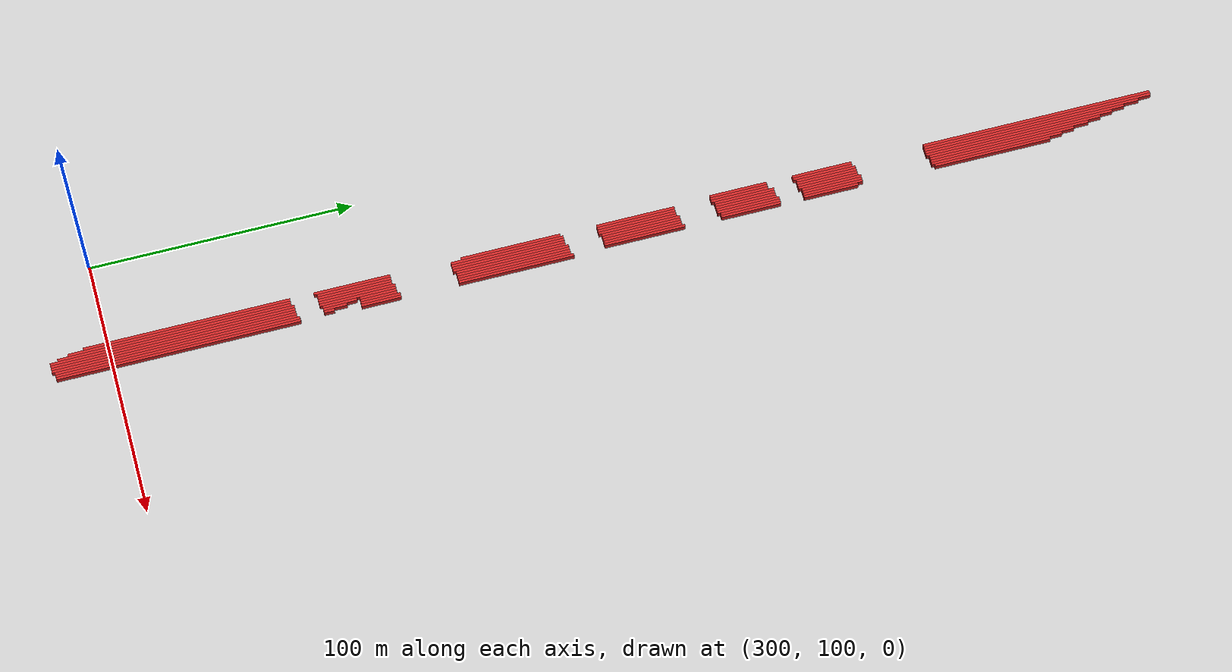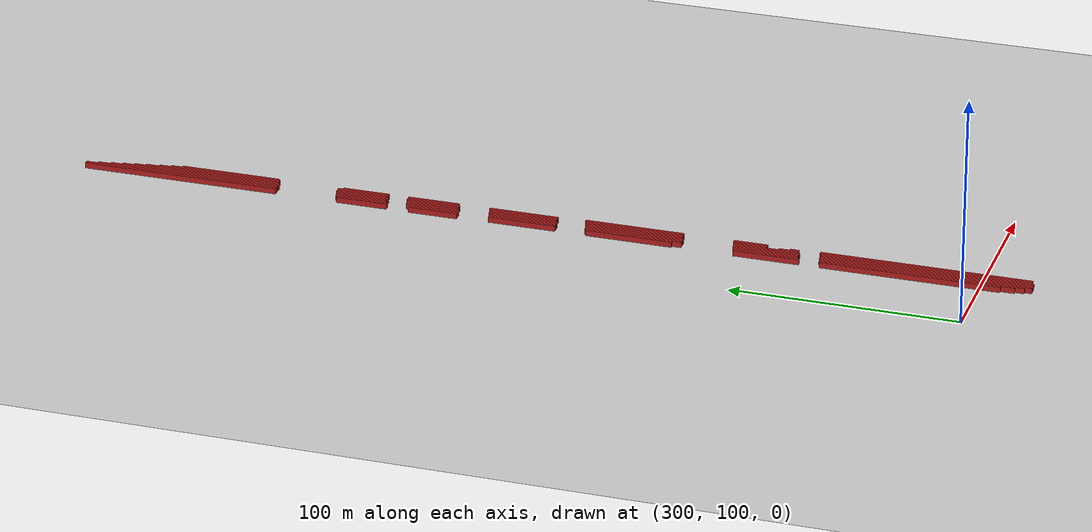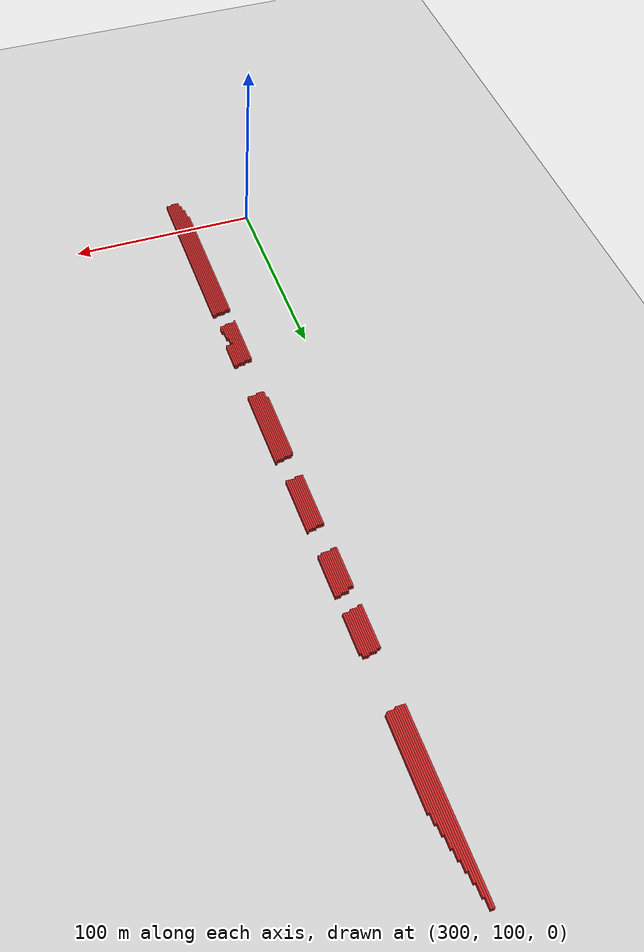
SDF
<sdf version="1.4">
 <world name="1_wall">
  <model name="ground_plane">
   <static>1</static>
   <link name="link">
    <collision name="collision">
     <geometry><plane><normal>0 0 1</normal><size>1000 1000</size></plane></geometry>
     <surface><friction><ode><mu>100</mu><mu2>50</mu2></ode></friction></surface>
    </collision>
    <visual name="visual">
     <cast_shadows>0</cast_shadows>
     <geometry><plane><normal>0 0 1</normal><size>10000 10000</size></plane></geometry>
     <material>
      <script><uri>file://media/materials/scripts/gazebo.material</uri><name>Gazebo/Grey</name></script>
     </material>
    </visual>
    <velocity_decay><linear>0</linear><angular>0</angular></velocity_decay>
   </link>
  </model>
  <model name="Wall_1798">
   <static>1</static>
   <link name="Wall_1798">
    <collision name="Wall_Collision_1798">
     <geometry><box><size>22.0 1.0 2.5</size></box></geometry>
     <pose>0 0 1.25 0 -0 0</pose>
    </collision>
    <visual name="Wall_Visual_1798">
     <pose>0 0 1.25 0 -0 0</pose>
     <geometry><box><size>22.0 1.0 2.5</size></box></geometry>
     <material>
      <script><uri>file://media/materials/scripts/gazebo.material</uri><name>Gazebo/Red</name></script>
     </material>
    </visual>
    <velocity_decay><linear>0</linear><angular>0</angular></velocity_decay>
    <pose>331.5 341.0 0 0 0 1.5707963267948966</pose>
   </link>
  </model>
  <model name="Wall_1799">
   <static>1</static>
   <link name="Wall_1799">
    <collision name="Wall_Collision_1799">
     <geometry><box><size>23.0 1.0 2.5</size></box></geometry>
     <pose>0 0 1.25 0 -0 0</pose>
    </collision>
    <visual name="Wall_Visual_1799">
     <pose>0 0 1.25 0 -0 0</pose>
     <geometry><box><size>23.0 1.0 2.5</size></box></geometry>
     <material>
      <script><uri>file://media/materials/scripts/gazebo.material</uri><name>Gazebo/Red</name></script>
     </material>
    </visual>
    <velocity_decay><linear>0</linear><angular>0</angular></velocity_decay>
    <pose>331.5 373.5 0 0 0 1.5707963267948966</pose>
   </link>
  </model>
  <model name="Wall_1800">
   <static>1</static>
   <link name="Wall_1800">
    <collision name="Wall_Collision_1800">
     <geometry><box><size>89.0 1.0 2.5</size></box></geometry>
     <pose>0 0 1.25 0 -0 0</pose>
    </collision>
    <visual name="Wall_Visual_1800">
     <pose>0 0 1.25 0 -0 0</pose>
     <geometry><box><size>89.0 1.0 2.5</size></box></geometry>
     <material>
      <script><uri>file://media/materials/scripts/gazebo.material</uri><name>Gazebo/Red</name></script>
     </material>
    </visual>
    <velocity_decay><linear>0</linear><angular>0</angular></velocity_decay>
    <pose>331.5 457.5 0 0 0 1.5707963267948966</pose>
   </link>
  </model>
  <model name="Wall_1801">
   <static>1</static>
   <link name="Wall_1801">
    <collision name="Wall_Collision_1801">
     <geometry><box><size>78.0 1.0 2.5</size></box></geometry>
     <pose>0 0 1.25 0 -0 0</pose>
    </collision>
    <visual name="Wall_Visual_1801">
     <pose>0 0 1.25 0 -0 0</pose>
     <geometry><box><size>78.0 1.0 2.5</size></box></geometry>
     <material>
      <script><uri>file://media/materials/scripts/gazebo.material</uri><name>Gazebo/Red</name></script>
     </material>
    </visual>
    <velocity_decay><linear>0</linear><angular>0</angular></velocity_decay>
    <pose>332.5 130.0 0 0 0 1.5707963267948966</pose>
   </link>
  </model>
  <model name="Wall_1802">
   <static>1</static>
   <link name="Wall_1802">
    <collision name="Wall_Collision_1802">
     <geometry><box><size>29.0 1.0 2.5</size></box></geometry>
     <pose>0 0 1.25 0 -0 0</pose>
    </collision>
    <visual name="Wall_Visual_1802">
     <pose>0 0 1.25 0 -0 0</pose>
     <geometry><box><size>29.0 1.0 2.5</size></box></geometry>
     <material>
      <script><uri>file://media/materials/scripts/gazebo.material</uri><name>Gazebo/Red</name></script>
     </material>
    </visual>
    <velocity_decay><linear>0</linear><angular>0</angular></velocity_decay>
    <pose>332.5 192.5 0 0 0 1.5707963267948966</pose>
   </link>
  </model>
  <model name="Wall_1803">
   <static>1</static>
   <link name="Wall_1803">
    <collision name="Wall_Collision_1803">
     <geometry><box><size>38.0 1.0 2.5</size></box></geometry>
     <pose>0 0 1.25 0 -0 0</pose>
    </collision>
    <visual name="Wall_Visual_1803">
     <pose>0 0 1.25 0 -0 0</pose>
     <geometry><box><size>38.0 1.0 2.5</size></box></geometry>
     <material>
      <script><uri>file://media/materials/scripts/gazebo.material</uri><name>Gazebo/Red</name></script>
     </material>
    </visual>
    <velocity_decay><linear>0</linear><angular>0</angular></velocity_decay>
    <pose>332.5 253.0 0 0 0 1.5707963267948966</pose>
   </link>
  </model>
  <model name="Wall_1804">
   <static>1</static>
   <link name="Wall_1804">
    <collision name="Wall_Collision_1804">
     <geometry><box><size>30.0 1.0 2.5</size></box></geometry>
     <pose>0 0 1.25 0 -0 0</pose>
    </collision>
    <visual name="Wall_Visual_1804">
     <pose>0 0 1.25 0 -0 0</pose>
     <geometry><box><size>30.0 1.0 2.5</size></box></geometry>
     <material>
      <script><uri>file://media/materials/scripts/gazebo.material</uri><name>Gazebo/Red</name></script>
     </material>
    </visual>
    <velocity_decay><linear>0</linear><angular>0</angular></velocity_decay>
    <pose>332.5 301.0 0 0 0 1.5707963267948966</pose>
   </link>
  </model>
  <model name="Wall_1805">
   <static>1</static>
   <link name="Wall_1805">
    <collision name="Wall_Collision_1805">
     <geometry><box><size>22.0 1.0 2.5</size></box></geometry>
     <pose>0 0 1.25 0 -0 0</pose>
    </collision>
    <visual name="Wall_Visual_1805">
     <pose>0 0 1.25 0 -0 0</pose>
     <geometry><box><size>22.0 1.0 2.5</size></box></geometry>
     <material>
      <script><uri>file://media/materials/scripts/gazebo.material</uri><name>Gazebo/Red</name></script>
     </material>
    </visual>
    <velocity_decay><linear>0</linear><angular>0</angular></velocity_decay>
    <pose>332.5 341.0 0 0 0 1.5707963267948966</pose>
   </link>
  </model>
  <model name="Wall_1806">
   <static>1</static>
   <link name="Wall_1806">
    <collision name="Wall_Collision_1806">
     <geometry><box><size>23.0 1.0 2.5</size></box></geometry>
     <pose>0 0 1.25 0 -0 0</pose>
    </collision>
    <visual name="Wall_Visual_1806">
     <pose>0 0 1.25 0 -0 0</pose>
     <geometry><box><size>23.0 1.0 2.5</size></box></geometry>
     <material>
      <script><uri>file://media/materials/scripts/gazebo.material</uri><name>Gazebo/Red</name></script>
     </material>
    </visual>
    <velocity_decay><linear>0</linear><angular>0</angular></velocity_decay>
    <pose>332.5 373.5 0 0 0 1.5707963267948966</pose>
   </link>
  </model>
  <model name="Wall_1807">
   <static>1</static>
   <link name="Wall_1807">
    <collision name="Wall_Collision_1807">
     <geometry><box><size>89.0 1.0 2.5</size></box></geometry>
     <pose>0 0 1.25 0 -0 0</pose>
    </collision>
    <visual name="Wall_Visual_1807">
     <pose>0 0 1.25 0 -0 0</pose>
     <geometry><box><size>89.0 1.0 2.5</size></box></geometry>
     <material>
      <script><uri>file://media/materials/scripts/gazebo.material</uri><name>Gazebo/Red</name></script>
     </material>
    </visual>
    <velocity_decay><linear>0</linear><angular>0</angular></velocity_decay>
    <pose>332.5 457.5 0 0 0 1.5707963267948966</pose>
   </link>
  </model>
  <model name="Wall_1808">
   <static>1</static>
   <link name="Wall_1808">
    <collision name="Wall_Collision_1808">
     <geometry><box><size>84.0 1.0 2.5</size></box></geometry>
     <pose>0 0 1.25 0 -0 0</pose>
    </collision>
    <visual name="Wall_Visual_1808">
     <pose>0 0 1.25 0 -0 0</pose>
     <geometry><box><size>84.0 1.0 2.5</size></box></geometry>
     <material>
      <script><uri>file://media/materials/scripts/gazebo.material</uri><name>Gazebo/Red</name></script>
     </material>
    </visual>
    <velocity_decay><linear>0</linear><angular>0</angular></velocity_decay>
    <pose>333.5 127.0 0 0 0 1.5707963267948966</pose>
   </link>
  </model>
  <model name="Wall_1809">
   <static>1</static>
   <link name="Wall_1809">
    <collision name="Wall_Collision_1809">
     <geometry><box><size>28.0 1.0 2.5</size></box></geometry>
     <pose>0 0 1.25 0 -0 0</pose>
    </collision>
    <visual name="Wall_Visual_1809">
     <pose>0 0 1.25 0 -0 0</pose>
     <geometry><box><size>28.0 1.0 2.5</size></box></geometry>
     <material>
      <script><uri>file://media/materials/scripts/gazebo.material</uri><name>Gazebo/Red</name></script>
     </material>
    </visual>
    <velocity_decay><linear>0</linear><angular>0</angular></velocity_decay>
    <pose>333.5 193.0 0 0 0 1.5707963267948966</pose>
   </link>
  </model>
  <model name="Wall_1810">
   <static>1</static>
   <link name="Wall_1810">
    <collision name="Wall_Collision_1810">
     <geometry><box><size>43.0 1.0 2.5</size></box></geometry>
     <pose>0 0 1.25 0 -0 0</pose>
    </collision>
    <visual name="Wall_Visual_1810">
     <pose>0 0 1.25 0 -0 0</pose>
     <geometry><box><size>43.0 1.0 2.5</size></box></geometry>
     <material>
      <script><uri>file://media/materials/scripts/gazebo.material</uri><name>Gazebo/Red</name></script>
     </material>
    </visual>
    <velocity_decay><linear>0</linear><angular>0</angular></velocity_decay>
    <pose>333.5 251.5 0 0 0 1.5707963267948966</pose>
   </link>
  </model>
  <model name="Wall_1811">
   <static>1</static>
   <link name="Wall_1811">
    <collision name="Wall_Collision_1811">
     <geometry><box><size>30.0 1.0 2.5</size></box></geometry>
     <pose>0 0 1.25 0 -0 0</pose>
    </collision>
    <visual name="Wall_Visual_1811">
     <pose>0 0 1.25 0 -0 0</pose>
     <geometry><box><size>30.0 1.0 2.5</size></box></geometry>
     <material>
      <script><uri>file://media/materials/scripts/gazebo.material</uri><name>Gazebo/Red</name></script>
     </material>
    </visual>
    <velocity_decay><linear>0</linear><angular>0</angular></velocity_decay>
    <pose>333.5 301.0 0 0 0 1.5707963267948966</pose>
   </link>
  </model>
  <model name="Wall_1812">
   <static>1</static>
   <link name="Wall_1812">
    <collision name="Wall_Collision_1812">
     <geometry><box><size>22.0 1.0 2.5</size></box></geometry>
     <pose>0 0 1.25 0 -0 0</pose>
    </collision>
    <visual name="Wall_Visual_1812">
     <pose>0 0 1.25 0 -0 0</pose>
     <geometry><box><size>22.0 1.0 2.5</size></box></geometry>
     <material>
      <script><uri>file://media/materials/scripts/gazebo.material</uri><name>Gazebo/Red</name></script>
     </material>
    </visual>
    <velocity_decay><linear>0</linear><angular>0</angular></velocity_decay>
    <pose>333.5 341.0 0 0 0 1.5707963267948966</pose>
   </link>
  </model>
  <model name="Wall_1813">
   <static>1</static>
   <link name="Wall_1813">
    <collision name="Wall_Collision_1813">
     <geometry><box><size>23.0 1.0 2.5</size></box></geometry>
     <pose>0 0 1.25 0 -0 0</pose>
    </collision>
    <visual name="Wall_Visual_1813">
     <pose>0 0 1.25 0 -0 0</pose>
     <geometry><box><size>23.0 1.0 2.5</size></box></geometry>
     <material>
      <script><uri>file://media/materials/scripts/gazebo.material</uri><name>Gazebo/Red</name></script>
     </material>
    </visual>
    <velocity_decay><linear>0</linear><angular>0</angular></velocity_decay>
    <pose>333.5 374.5 0 0 0 1.5707963267948966</pose>
   </link>
  </model>
  <model name="Wall_1814">
   <static>1</static>
   <link name="Wall_1814">
    <collision name="Wall_Collision_1814">
     <geometry><box><size>84.0 1.0 2.5</size></box></geometry>
     <pose>0 0 1.25 0 -0 0</pose>
    </collision>
    <visual name="Wall_Visual_1814">
     <pose>0 0 1.25 0 -0 0</pose>
     <geometry><box><size>84.0 1.0 2.5</size></box></geometry>
     <material>
      <script><uri>file://media/materials/scripts/gazebo.material</uri><name>Gazebo/Red</name></script>
     </material>
    </visual>
    <velocity_decay><linear>0</linear><angular>0</angular></velocity_decay>
    <pose>333.5 455.0 0 0 0 1.5707963267948966</pose>
   </link>
  </model>
  <model name="Wall_1815">
   <static>1</static>
   <link name="Wall_1815">
    <collision name="Wall_Collision_1815">
     <geometry><box><size>88.0 1.0 2.5</size></box></geometry>
     <pose>0 0 1.25 0 -0 0</pose>
    </collision>
    <visual name="Wall_Visual_1815">
     <pose>0 0 1.25 0 -0 0</pose>
     <geometry><box><size>88.0 1.0 2.5</size></box></geometry>
     <material>
      <script><uri>file://media/materials/scripts/gazebo.material</uri><name>Gazebo/Red</name></script>
     </material>
    </visual>
    <velocity_decay><linear>0</linear><angular>0</angular></velocity_decay>
    <pose>334.5 125.0 0 0 0 1.5707963267948966</pose>
   </link>
  </model>
  <model name="Wall_1816">
   <static>1</static>
   <link name="Wall_1816">
    <collision name="Wall_Collision_1816">
     <geometry><box><size>28.0 1.0 2.5</size></box></geometry>
     <pose>0 0 1.25 0 -0 0</pose>
    </collision>
    <visual name="Wall_Visual_1816">
     <pose>0 0 1.25 0 -0 0</pose>
     <geometry><box><size>28.0 1.0 2.5</size></box></geometry>
     <material>
      <script><uri>file://media/materials/scripts/gazebo.material</uri><name>Gazebo/Red</name></script>
     </material>
    </visual>
    <velocity_decay><linear>0</linear><angular>0</angular></velocity_decay>
    <pose>334.5 193.0 0 0 0 1.5707963267948966</pose>
   </link>
  </model>
  <model name="Wall_1817">
   <static>1</static>
   <link name="Wall_1817">
    <collision name="Wall_Collision_1817">
     <geometry><box><size>43.0 1.0 2.5</size></box></geometry>
     <pose>0 0 1.25 0 -0 0</pose>
    </collision>
    <visual name="Wall_Visual_1817">
     <pose>0 0 1.25 0 -0 0</pose>
     <geometry><box><size>43.0 1.0 2.5</size></box></geometry>
     <material>
      <script><uri>file://media/materials/scripts/gazebo.material</uri><name>Gazebo/Red</name></script>
     </material>
    </visual>
    <velocity_decay><linear>0</linear><angular>0</angular></velocity_decay>
    <pose>334.5 251.5 0 0 0 1.5707963267948966</pose>
   </link>
  </model>
  <model name="Wall_1818">
   <static>1</static>
   <link name="Wall_1818">
    <collision name="Wall_Collision_1818">
     <geometry><box><size>30.0 1.0 2.5</size></box></geometry>
     <pose>0 0 1.25 0 -0 0</pose>
    </collision>
    <visual name="Wall_Visual_1818">
     <pose>0 0 1.25 0 -0 0</pose>
     <geometry><box><size>30.0 1.0 2.5</size></box></geometry>
     <material>
      <script><uri>file://media/materials/scripts/gazebo.material</uri><name>Gazebo/Red</name></script>
     </material>
    </visual>
    <velocity_decay><linear>0</linear><angular>0</angular></velocity_decay>
    <pose>334.5 301.0 0 0 0 1.5707963267948966</pose>
   </link>
  </model>
  <model name="Wall_1819">
   <static>1</static>
   <link name="Wall_1819">
    <collision name="Wall_Collision_1819">
     <geometry><box><size>23.0 1.0 2.5</size></box></geometry>
     <pose>0 0 1.25 0 -0 0</pose>
    </collision>
    <visual name="Wall_Visual_1819">
     <pose>0 0 1.25 0 -0 0</pose>
     <geometry><box><size>23.0 1.0 2.5</size></box></geometry>
     <material>
      <script><uri>file://media/materials/scripts/gazebo.material</uri><name>Gazebo/Red</name></script>
     </material>
    </visual>
    <velocity_decay><linear>0</linear><angular>0</angular></velocity_decay>
    <pose>334.5 342.5 0 0 0 1.5707963267948966</pose>
   </link>
  </model>
  <model name="Wall_1820">
   <static>1</static>
   <link name="Wall_1820">
    <collision name="Wall_Collision_1820">
     <geometry><box><size>23.0 1.0 2.5</size></box></geometry>
     <pose>0 0 1.25 0 -0 0</pose>
    </collision>
    <visual name="Wall_Visual_1820">
     <pose>0 0 1.25 0 -0 0</pose>
     <geometry><box><size>23.0 1.0 2.5</size></box></geometry>
     <material>
      <script><uri>file://media/materials/scripts/gazebo.material</uri><name>Gazebo/Red</name></script>
     </material>
    </visual>
    <velocity_decay><linear>0</linear><angular>0</angular></velocity_decay>
    <pose>334.5 374.5 0 0 0 1.5707963267948966</pose>
   </link>
  </model>
  <model name="Wall_1821">
   <static>1</static>
   <link name="Wall_1821">
    <collision name="Wall_Collision_1821">
     <geometry><box><size>78.0 1.0 2.5</size></box></geometry>
     <pose>0 0 1.25 0 -0 0</pose>
    </collision>
    <visual name="Wall_Visual_1821">
     <pose>0 0 1.25 0 -0 0</pose>
     <geometry><box><size>78.0 1.0 2.5</size></box></geometry>
     <material>
      <script><uri>file://media/materials/scripts/gazebo.material</uri><name>Gazebo/Red</name></script>
     </material>
    </visual>
    <velocity_decay><linear>0</linear><angular>0</angular></velocity_decay>
    <pose>334.5 452.0 0 0 0 1.5707963267948966</pose>
   </link>
  </model>
  <model name="Wall_1822">
   <static>1</static>
   <link name="Wall_1822">
    <collision name="Wall_Collision_1822">
     <geometry><box><size>92.0 1.0 2.5</size></box></geometry>
     <pose>0 0 1.25 0 -0 0</pose>
    </collision>
    <visual name="Wall_Visual_1822">
     <pose>0 0 1.25 0 -0 0</pose>
     <geometry><box><size>92.0 1.0 2.5</size></box></geometry>
     <material>
      <script><uri>file://media/materials/scripts/gazebo.material</uri><name>Gazebo/Red</name></script>
     </material>
    </visual>
    <velocity_decay><linear>0</linear><angular>0</angular></velocity_decay>
    <pose>335.5 124.0 0 0 0 1.5707963267948966</pose>
   </link>
  </model>
  <model name="Wall_1823">
   <static>1</static>
   <link name="Wall_1823">
    <collision name="Wall_Collision_1823">
     <geometry><box><size>28.0 1.0 2.5</size></box></geometry>
     <pose>0 0 1.25 0 -0 0</pose>
    </collision>
    <visual name="Wall_Visual_1823">
     <pose>0 0 1.25 0 -0 0</pose>
     <geometry><box><size>28.0 1.0 2.5</size></box></geometry>
     <material>
      <script><uri>file://media/materials/scripts/gazebo.material</uri><name>Gazebo/Red</name></script>
     </material>
    </visual>
    <velocity_decay><linear>0</linear><angular>0</angular></velocity_decay>
    <pose>335.5 193.0 0 0 0 1.5707963267948966</pose>
   </link>
  </model>
  <model name="Wall_1824">
   <static>1</static>
   <link name="Wall_1824">
    <collision name="Wall_Collision_1824">
     <geometry><box><size>43.0 1.0 2.5</size></box></geometry>
     <pose>0 0 1.25 0 -0 0</pose>
    </collision>
    <visual name="Wall_Visual_1824">
     <pose>0 0 1.25 0 -0 0</pose>
     <geometry><box><size>43.0 1.0 2.5</size></box></geometry>
     <material>
      <script><uri>file://media/materials/scripts/gazebo.material</uri><name>Gazebo/Red</name></script>
     </material>
    </visual>
    <velocity_decay><linear>0</linear><angular>0</angular></velocity_decay>
    <pose>335.5 251.5 0 0 0 1.5707963267948966</pose>
   </link>
  </model>
  <model name="Wall_1825">
   <static>1</static>
   <link name="Wall_1825">
    <collision name="Wall_Collision_1825">
     <geometry><box><size>30.0 1.0 2.5</size></box></geometry>
     <pose>0 0 1.25 0 -0 0</pose>
    </collision>
    <visual name="Wall_Visual_1825">
     <pose>0 0 1.25 0 -0 0</pose>
     <geometry><box><size>30.0 1.0 2.5</size></box></geometry>
     <material>
      <script><uri>file://media/materials/scripts/gazebo.material</uri><name>Gazebo/Red</name></script>
     </material>
    </visual>
    <velocity_decay><linear>0</linear><angular>0</angular></velocity_decay>
    <pose>335.5 301.0 0 0 0 1.5707963267948966</pose>
   </link>
  </model>
  <model name="Wall_1826">
   <static>1</static>
   <link name="Wall_1826">
    <collision name="Wall_Collision_1826">
     <geometry><box><size>23.0 1.0 2.5</size></box></geometry>
     <pose>0 0 1.25 0 -0 0</pose>
    </collision>
    <visual name="Wall_Visual_1826">
     <pose>0 0 1.25 0 -0 0</pose>
     <geometry><box><size>23.0 1.0 2.5</size></box></geometry>
     <material>
      <script><uri>file://media/materials/scripts/gazebo.material</uri><name>Gazebo/Red</name></script>
     </material>
    </visual>
    <velocity_decay><linear>0</linear><angular>0</angular></velocity_decay>
    <pose>335.5 342.5 0 0 0 1.5707963267948966</pose>
   </link>
  </model>
  <model name="Wall_1827">
   <static>1</static>
   <link name="Wall_1827">
    <collision name="Wall_Collision_1827">
     <geometry><box><size>23.0 1.0 2.5</size></box></geometry>
     <pose>0 0 1.25 0 -0 0</pose>
    </collision>
    <visual name="Wall_Visual_1827">
     <pose>0 0 1.25 0 -0 0</pose>
     <geometry><box><size>23.0 1.0 2.5</size></box></geometry>
     <material>
      <script><uri>file://media/materials/scripts/gazebo.material</uri><name>Gazebo/Red</name></script>
     </material>
    </visual>
    <velocity_decay><linear>0</linear><angular>0</angular></velocity_decay>
    <pose>335.5 374.5 0 0 0 1.5707963267948966</pose>
   </link>
  </model>
  <model name="Wall_1828">
   <static>1</static>
   <link name="Wall_1828">
    <collision name="Wall_Collision_1828">
     <geometry><box><size>73.0 1.0 2.5</size></box></geometry>
     <pose>0 0 1.25 0 -0 0</pose>
    </collision>
    <visual name="Wall_Visual_1828">
     <pose>0 0 1.25 0 -0 0</pose>
     <geometry><box><size>73.0 1.0 2.5</size></box></geometry>
     <material>
      <script><uri>file://media/materials/scripts/gazebo.material</uri><name>Gazebo/Red</name></script>
     </material>
    </visual>
    <velocity_decay><linear>0</linear><angular>0</angular></velocity_decay>
    <pose>335.5 449.5 0 0 0 1.5707963267948966</pose>
   </link>
  </model>
  <model name="Wall_1829">
   <static>1</static>
   <link name="Wall_1829">
    <collision name="Wall_Collision_1829">
     <geometry><box><size>92.0 1.0 2.5</size></box></geometry>
     <pose>0 0 1.25 0 -0 0</pose>
    </collision>
    <visual name="Wall_Visual_1829">
     <pose>0 0 1.25 0 -0 0</pose>
     <geometry><box><size>92.0 1.0 2.5</size></box></geometry>
     <material>
      <script><uri>file://media/materials/scripts/gazebo.material</uri><name>Gazebo/Red</name></script>
     </material>
    </visual>
    <velocity_decay><linear>0</linear><angular>0</angular></velocity_decay>
    <pose>336.5 124.0 0 0 0 1.5707963267948966</pose>
   </link>
  </model>
  <model name="Wall_1830">
   <static>1</static>
   <link name="Wall_1830">
    <collision name="Wall_Collision_1830">
     <geometry><box><size>29.0 1.0 2.5</size></box></geometry>
     <pose>0 0 1.25 0 -0 0</pose>
    </collision>
    <visual name="Wall_Visual_1830">
     <pose>0 0 1.25 0 -0 0</pose>
     <geometry><box><size>29.0 1.0 2.5</size></box></geometry>
     <material>
      <script><uri>file://media/materials/scripts/gazebo.material</uri><name>Gazebo/Red</name></script>
     </material>
    </visual>
    <velocity_decay><linear>0</linear><angular>0</angular></velocity_decay>
    <pose>336.5 193.5 0 0 0 1.5707963267948966</pose>
   </link>
  </model>
  <model name="Wall_1831">
   <static>1</static>
   <link name="Wall_1831">
    <collision name="Wall_Collision_1831">
     <geometry><box><size>43.0 1.0 2.5</size></box></geometry>
     <pose>0 0 1.25 0 -0 0</pose>
    </collision>
    <visual name="Wall_Visual_1831">
     <pose>0 0 1.25 0 -0 0</pose>
     <geometry><box><size>43.0 1.0 2.5</size></box></geometry>
     <material>
      <script><uri>file://media/materials/scripts/gazebo.material</uri><name>Gazebo/Red</name></script>
     </material>
    </visual>
    <velocity_decay><linear>0</linear><angular>0</angular></velocity_decay>
    <pose>336.5 251.5 0 0 0 1.5707963267948966</pose>
   </link>
  </model>
  <model name="Wall_1832">
   <static>1</static>
   <link name="Wall_1832">
    <collision name="Wall_Collision_1832">
     <geometry><box><size>30.0 1.0 2.5</size></box></geometry>
     <pose>0 0 1.25 0 -0 0</pose>
    </collision>
    <visual name="Wall_Visual_1832">
     <pose>0 0 1.25 0 -0 0</pose>
     <geometry><box><size>30.0 1.0 2.5</size></box></geometry>
     <material>
      <script><uri>file://media/materials/scripts/gazebo.material</uri><name>Gazebo/Red</name></script>
     </material>
    </visual>
    <velocity_decay><linear>0</linear><angular>0</angular></velocity_decay>
    <pose>336.5 302.0 0 0 0 1.5707963267948966</pose>
   </link>
  </model>
  <model name="Wall_1833">
   <static>1</static>
   <link name="Wall_1833">
    <collision name="Wall_Collision_1833">
     <geometry><box><size>23.0 1.0 2.5</size></box></geometry>
     <pose>0 0 1.25 0 -0 0</pose>
    </collision>
    <visual name="Wall_Visual_1833">
     <pose>0 0 1.25 0 -0 0</pose>
     <geometry><box><size>23.0 1.0 2.5</size></box></geometry>
     <material>
      <script><uri>file://media/materials/scripts/gazebo.material</uri><name>Gazebo/Red</name></script>
     </material>
    </visual>
    <velocity_decay><linear>0</linear><angular>0</angular></velocity_decay>
    <pose>336.5 342.5 0 0 0 1.5707963267948966</pose>
   </link>
  </model>
  <model name="Wall_1834">
   <static>1</static>
   <link name="Wall_1834">
    <collision name="Wall_Collision_1834">
     <geometry><box><size>23.0 1.0 2.5</size></box></geometry>
     <pose>0 0 1.25 0 -0 0</pose>
    </collision>
    <visual name="Wall_Visual_1834">
     <pose>0 0 1.25 0 -0 0</pose>
     <geometry><box><size>23.0 1.0 2.5</size></box></geometry>
     <material>
      <script><uri>file://media/materials/scripts/gazebo.material</uri><name>Gazebo/Red</name></script>
     </material>
    </visual>
    <velocity_decay><linear>0</linear><angular>0</angular></velocity_decay>
    <pose>336.5 374.5 0 0 0 1.5707963267948966</pose>
   </link>
  </model>
  <model name="Wall_1835">
   <static>1</static>
   <link name="Wall_1835">
    <collision name="Wall_Collision_1835">
     <geometry><box><size>67.0 1.0 2.5</size></box></geometry>
     <pose>0 0 1.25 0 -0 0</pose>
    </collision>
    <visual name="Wall_Visual_1835">
     <pose>0 0 1.25 0 -0 0</pose>
     <geometry><box><size>67.0 1.0 2.5</size></box></geometry>
     <material>
      <script><uri>file://media/materials/scripts/gazebo.material</uri><name>Gazebo/Red</name></script>
     </material>
    </visual>
    <velocity_decay><linear>0</linear><angular>0</angular></velocity_decay>
    <pose>336.5 447.5 0 0 0 1.5707963267948966</pose>
   </link>
  </model>
  <model name="Wall_1836">
   <static>1</static>
   <link name="Wall_1836">
    <collision name="Wall_Collision_1836">
     <geometry><box><size>92.0 1.0 2.5</size></box></geometry>
     <pose>0 0 1.25 0 -0 0</pose>
    </collision>
    <visual name="Wall_Visual_1836">
     <pose>0 0 1.25 0 -0 0</pose>
     <geometry><box><size>92.0 1.0 2.5</size></box></geometry>
     <material>
      <script><uri>file://media/materials/scripts/gazebo.material</uri><name>Gazebo/Red</name></script>
     </material>
    </visual>
    <velocity_decay><linear>0</linear><angular>0</angular></velocity_decay>
    <pose>337.5 124.0 0 0 0 1.5707963267948966</pose>
   </link>
  </model>
  <model name="Wall_1837">
   <static>1</static>
   <link name="Wall_1837">
    <collision name="Wall_Collision_1837">
     <geometry><box><size>29.0 1.0 2.5</size></box></geometry>
     <pose>0 0 1.25 0 -0 0</pose>
    </collision>
    <visual name="Wall_Visual_1837">
     <pose>0 0 1.25 0 -0 0</pose>
     <geometry><box><size>29.0 1.0 2.5</size></box></geometry>
     <material>
      <script><uri>file://media/materials/scripts/gazebo.material</uri><name>Gazebo/Red</name></script>
     </material>
    </visual>
    <velocity_decay><linear>0</linear><angular>0</angular></velocity_decay>
    <pose>337.5 193.5 0 0 0 1.5707963267948966</pose>
   </link>
  </model>
  <model name="Wall_1838">
   <static>1</static>
   <link name="Wall_1838">
    <collision name="Wall_Collision_1838">
     <geometry><box><size>43.0 1.0 2.5</size></box></geometry>
     <pose>0 0 1.25 0 -0 0</pose>
    </collision>
    <visual name="Wall_Visual_1838">
     <pose>0 0 1.25 0 -0 0</pose>
     <geometry><box><size>43.0 1.0 2.5</size></box></geometry>
     <material>
      <script><uri>file://media/materials/scripts/gazebo.material</uri><name>Gazebo/Red</name></script>
     </material>
    </visual>
    <velocity_decay><linear>0</linear><angular>0</angular></velocity_decay>
    <pose>337.5 252.5 0 0 0 1.5707963267948966</pose>
   </link>
  </model>
  <model name="Wall_1839">
   <static>1</static>
   <link name="Wall_1839">
    <collision name="Wall_Collision_1839">
     <geometry><box><size>30.0 1.0 2.5</size></box></geometry>
     <pose>0 0 1.25 0 -0 0</pose>
    </collision>
    <visual name="Wall_Visual_1839">
     <pose>0 0 1.25 0 -0 0</pose>
     <geometry><box><size>30.0 1.0 2.5</size></box></geometry>
     <material>
      <script><uri>file://media/materials/scripts/gazebo.material</uri><name>Gazebo/Red</name></script>
     </material>
    </visual>
    <velocity_decay><linear>0</linear><angular>0</angular></velocity_decay>
    <pose>337.5 302.0 0 0 0 1.5707963267948966</pose>
   </link>
  </model>
  <model name="Wall_1840">
   <static>1</static>
   <link name="Wall_1840">
    <collision name="Wall_Collision_1840">
     <geometry><box><size>23.0 1.0 2.5</size></box></geometry>
     <pose>0 0 1.25 0 -0 0</pose>
    </collision>
    <visual name="Wall_Visual_1840">
     <pose>0 0 1.25 0 -0 0</pose>
     <geometry><box><size>23.0 1.0 2.5</size></box></geometry>
     <material>
      <script><uri>file://media/materials/scripts/gazebo.material</uri><name>Gazebo/Red</name></script>
     </material>
    </visual>
    <velocity_decay><linear>0</linear><angular>0</angular></velocity_decay>
    <pose>337.5 342.5 0 0 0 1.5707963267948966</pose>
   </link>
  </model>
  <model name="Wall_1841">
   <static>1</static>
   <link name="Wall_1841">
    <collision name="Wall_Collision_1841">
     <geometry><box><size>23.0 1.0 2.5</size></box></geometry>
     <pose>0 0 1.25 0 -0 0</pose>
    </collision>
    <visual name="Wall_Visual_1841">
     <pose>0 0 1.25 0 -0 0</pose>
     <geometry><box><size>23.0 1.0 2.5</size></box></geometry>
     <material>
      <script><uri>file://media/materials/scripts/gazebo.material</uri><name>Gazebo/Red</name></script>
     </material>
    </visual>
    <velocity_decay><linear>0</linear><angular>0</angular></velocity_decay>
    <pose>337.5 375.5 0 0 0 1.5707963267948966</pose>
   </link>
  </model>
  <model name="Wall_1842">
   <static>1</static>
   <link name="Wall_1842">
    <collision name="Wall_Collision_1842">
     <geometry><box><size>62.0 1.0 2.5</size></box></geometry>
     <pose>0 0 1.25 0 -0 0</pose>
    </collision>
    <visual name="Wall_Visual_1842">
     <pose>0 0 1.25 0 -0 0</pose>
     <geometry><box><size>62.0 1.0 2.5</size></box></geometry>
     <material>
      <script><uri>file://media/materials/scripts/gazebo.material</uri><name>Gazebo/Red</name></script>
     </material>
    </visual>
    <velocity_decay><linear>0</linear><angular>0</angular></velocity_decay>
    <pose>337.5 445.0 0 0 0 1.5707963267948966</pose>
   </link>
  </model>
  <model name="Wall_1843">
   <static>1</static>
   <link name="Wall_1843">
    <collision name="Wall_Collision_1843">
     <geometry><box><size>92.0 1.0 2.5</size></box></geometry>
     <pose>0 0 1.25 0 -0 0</pose>
    </collision>
    <visual name="Wall_Visual_1843">
     <pose>0 0 1.25 0 -0 0</pose>
     <geometry><box><size>92.0 1.0 2.5</size></box></geometry>
     <material>
      <script><uri>file://media/materials/scripts/gazebo.material</uri><name>Gazebo/Red</name></script>
     </material>
    </visual>
    <velocity_decay><linear>0</linear><angular>0</angular></velocity_decay>
    <pose>338.5 124.0 0 0 0 1.5707963267948966</pose>
   </link>
  </model>
  <model name="Wall_1844">
   <static>1</static>
   <link name="Wall_1844">
    <collision name="Wall_Collision_1844">
     <geometry><box><size>13.0 1.0 2.5</size></box></geometry>
     <pose>0 0 1.25 0 -0 0</pose>
    </collision>
    <visual name="Wall_Visual_1844">
     <pose>0 0 1.25 0 -0 0</pose>
     <geometry><box><size>13.0 1.0 2.5</size></box></geometry>
     <material>
      <script><uri>file://media/materials/scripts/gazebo.material</uri><name>Gazebo/Red</name></script>
     </material>
    </visual>
    <velocity_decay><linear>0</linear><angular>0</angular></velocity_decay>
    <pose>338.5 186.5 0 0 0 1.5707963267948966</pose>
   </link>
  </model>
  <model name="Wall_1845">
   <static>1</static>
   <link name="Wall_1845">
    <collision name="Wall_Collision_1845">
     <geometry><box><size>14.0 1.0 2.5</size></box></geometry>
     <pose>0 0 1.25 0 -0 0</pose>
    </collision>
    <visual name="Wall_Visual_1845">
     <pose>0 0 1.25 0 -0 0</pose>
     <geometry><box><size>14.0 1.0 2.5</size></box></geometry>
     <material>
      <script><uri>file://media/materials/scripts/gazebo.material</uri><name>Gazebo/Red</name></script>
     </material>
    </visual>
    <velocity_decay><linear>0</linear><angular>0</angular></velocity_decay>
    <pose>338.5 201.0 0 0 0 1.5707963267948966</pose>
   </link>
  </model>
  <model name="Wall_1846">
   <static>1</static>
   <link name="Wall_1846">
    <collision name="Wall_Collision_1846">
     <geometry><box><size>43.0 1.0 2.5</size></box></geometry>
     <pose>0 0 1.25 0 -0 0</pose>
    </collision>
    <visual name="Wall_Visual_1846">
     <pose>0 0 1.25 0 -0 0</pose>
     <geometry><box><size>43.0 1.0 2.5</size></box></geometry>
     <material>
      <script><uri>file://media/materials/scripts/gazebo.material</uri><name>Gazebo/Red</name></script>
     </material>
    </visual>
    <velocity_decay><linear>0</linear><angular>0</angular></velocity_decay>
    <pose>338.5 252.5 0 0 0 1.5707963267948966</pose>
   </link>
  </model>
  <model name="Wall_1847">
   <static>1</static>
   <link name="Wall_1847">
    <collision name="Wall_Collision_1847">
     <geometry><box><size>30.0 1.0 2.5</size></box></geometry>
     <pose>0 0 1.25 0 -0 0</pose>
    </collision>
    <visual name="Wall_Visual_1847">
     <pose>0 0 1.25 0 -0 0</pose>
     <geometry><box><size>30.0 1.0 2.5</size></box></geometry>
     <material>
      <script><uri>file://media/materials/scripts/gazebo.material</uri><name>Gazebo/Red</name></script>
     </material>
    </visual>
    <velocity_decay><linear>0</linear><angular>0</angular></velocity_decay>
    <pose>338.5 302.0 0 0 0 1.5707963267948966</pose>
   </link>
  </model>
  <model name="Wall_1848">
   <static>1</static>
   <link name="Wall_1848">
    <collision name="Wall_Collision_1848">
     <geometry><box><size>24.0 1.0 2.5</size></box></geometry>
     <pose>0 0 1.25 0 -0 0</pose>
    </collision>
    <visual name="Wall_Visual_1848">
     <pose>0 0 1.25 0 -0 0</pose>
     <geometry><box><size>24.0 1.0 2.5</size></box></geometry>
     <material>
      <script><uri>file://media/materials/scripts/gazebo.material</uri><name>Gazebo/Red</name></script>
     </material>
    </visual>
    <velocity_decay><linear>0</linear><angular>0</angular></velocity_decay>
    <pose>338.5 343.0 0 0 0 1.5707963267948966</pose>
   </link>
  </model>
  <model name="Wall_1849">
   <static>1</static>
   <link name="Wall_1849">
    <collision name="Wall_Collision_1849">
     <geometry><box><size>23.0 1.0 2.5</size></box></geometry>
     <pose>0 0 1.25 0 -0 0</pose>
    </collision>
    <visual name="Wall_Visual_1849">
     <pose>0 0 1.25 0 -0 0</pose>
     <geometry><box><size>23.0 1.0 2.5</size></box></geometry>
     <material>
      <script><uri>file://media/materials/scripts/gazebo.material</uri><name>Gazebo/Red</name></script>
     </material>
    </visual>
    <velocity_decay><linear>0</linear><angular>0</angular></velocity_decay>
    <pose>338.5 375.5 0 0 0 1.5707963267948966</pose>
   </link>
  </model>
  <model name="Wall_1850">
   <static>1</static>
   <link name="Wall_1850">
    <collision name="Wall_Collision_1850">
     <geometry><box><size>56.0 1.0 2.5</size></box></geometry>
     <pose>0 0 1.25 0 -0 0</pose>
    </collision>
    <visual name="Wall_Visual_1850">
     <pose>0 0 1.25 0 -0 0</pose>
     <geometry><box><size>56.0 1.0 2.5</size></box></geometry>
     <material>
      <script><uri>file://media/materials/scripts/gazebo.material</uri><name>Gazebo/Red</name></script>
     </material>
    </visual>
    <velocity_decay><linear>0</linear><angular>0</angular></velocity_decay>
    <pose>338.5 442.0 0 0 0 1.5707963267948966</pose>
   </link>
  </model>
  <model name="Wall_1851">
   <static>1</static>
   <link name="Wall_1851">
    <collision name="Wall_Collision_1851">
     <geometry><box><size>91.0 1.0 2.5</size></box></geometry>
     <pose>0 0 1.25 0 -0 0</pose>
    </collision>
    <visual name="Wall_Visual_1851">
     <pose>0 0 1.25 0 -0 0</pose>
     <geometry><box><size>91.0 1.0 2.5</size></box></geometry>
     <material>
      <script><uri>file://media/materials/scripts/gazebo.material</uri><name>Gazebo/Red</name></script>
     </material>
    </visual>
    <velocity_decay><linear>0</linear><angular>0</angular></velocity_decay>
    <pose>339.5 124.5 0 0 0 1.5707963267948966</pose>
   </link>
  </model>
  <model name="Wall_1852">
   <static>1</static>
   <link name="Wall_1852">
    <collision name="Wall_Collision_1852">
     <geometry><box><size>9.0 1.0 2.5</size></box></geometry>
     <pose>0 0 1.25 0 -0 0</pose>
    </collision>
    <visual name="Wall_Visual_1852">
     <pose>0 0 1.25 0 -0 0</pose>
     <geometry><box><size>9.0 1.0 2.5</size></box></geometry>
     <material>
      <script><uri>file://media/materials/scripts/gazebo.material</uri><name>Gazebo/Red</name></script>
     </material>
    </visual>
    <velocity_decay><linear>0</linear><angular>0</angular></velocity_decay>
    <pose>339.5 184.5 0 0 0 1.5707963267948966</pose>
   </link>
  </model>
  <model name="Wall_1853">
   <static>1</static>
   <link name="Wall_1853">
    <collision name="Wall_Collision_1853">
     <geometry><box><size>14.0 1.0 2.5</size></box></geometry>
     <pose>0 0 1.25 0 -0 0</pose>
    </collision>
    <visual name="Wall_Visual_1853">
     <pose>0 0 1.25 0 -0 0</pose>
     <geometry><box><size>14.0 1.0 2.5</size></box></geometry>
     <material>
      <script><uri>file://media/materials/scripts/gazebo.material</uri><name>Gazebo/Red</name></script>
     </material>
    </visual>
    <velocity_decay><linear>0</linear><angular>0</angular></velocity_decay>
    <pose>339.5 201.0 0 0 0 1.5707963267948966</pose>
   </link>
  </model>
  <model name="Wall_1854">
   <static>1</static>
   <link name="Wall_1854">
    <collision name="Wall_Collision_1854">
     <geometry><box><size>43.0 1.0 2.5</size></box></geometry>
     <pose>0 0 1.25 0 -0 0</pose>
    </collision>
    <visual name="Wall_Visual_1854">
     <pose>0 0 1.25 0 -0 0</pose>
     <geometry><box><size>43.0 1.0 2.5</size></box></geometry>
     <material>
      <script><uri>file://media/materials/scripts/gazebo.material</uri><name>Gazebo/Red</name></script>
     </material>
    </visual>
    <velocity_decay><linear>0</linear><angular>0</angular></velocity_decay>
    <pose>339.5 252.5 0 0 0 1.5707963267948966</pose>
   </link>
  </model>
  <model name="Wall_1855">
   <static>1</static>
   <link name="Wall_1855">
    <collision name="Wall_Collision_1855">
     <geometry><box><size>30.0 1.0 2.5</size></box></geometry>
     <pose>0 0 1.25 0 -0 0</pose>
    </collision>
    <visual name="Wall_Visual_1855">
     <pose>0 0 1.25 0 -0 0</pose>
     <geometry><box><size>30.0 1.0 2.5</size></box></geometry>
     <material>
      <script><uri>file://media/materials/scripts/gazebo.material</uri><name>Gazebo/Red</name></script>
     </material>
    </visual>
    <velocity_decay><linear>0</linear><angular>0</angular></velocity_decay>
    <pose>339.5 302.0 0 0 0 1.5707963267948966</pose>
   </link>
  </model>
  <model name="Wall_1856">
   <static>1</static>
   <link name="Wall_1856">
    <collision name="Wall_Collision_1856">
     <geometry><box><size>23.0 1.0 2.5</size></box></geometry>
     <pose>0 0 1.25 0 -0 0</pose>
    </collision>
    <visual name="Wall_Visual_1856">
     <pose>0 0 1.25 0 -0 0</pose>
     <geometry><box><size>23.0 1.0 2.5</size></box></geometry>
     <material>
      <script><uri>file://media/materials/scripts/gazebo.material</uri><name>Gazebo/Red</name></script>
     </material>
    </visual>
    <velocity_decay><linear>0</linear><angular>0</angular></velocity_decay>
    <pose>339.5 343.5 0 0 0 1.5707963267948966</pose>
   </link>
  </model>
  <model name="Wall_1857">
   <static>1</static>
   <link name="Wall_1857">
    <collision name="Wall_Collision_1857">
     <geometry><box><size>23.0 1.0 2.5</size></box></geometry>
     <pose>0 0 1.25 0 -0 0</pose>
    </collision>
    <visual name="Wall_Visual_1857">
     <pose>0 0 1.25 0 -0 0</pose>
     <geometry><box><size>23.0 1.0 2.5</size></box></geometry>
     <material>
      <script><uri>file://media/materials/scripts/gazebo.material</uri><name>Gazebo/Red</name></script>
     </material>
    </visual>
    <velocity_decay><linear>0</linear><angular>0</angular></velocity_decay>
    <pose>339.5 375.5 0 0 0 1.5707963267948966</pose>
   </link>
  </model>
  <model name="Wall_1858">
   <static>1</static>
   <link name="Wall_1858">
    <collision name="Wall_Collision_1858">
     <geometry><box><size>51.0 1.0 2.5</size></box></geometry>
     <pose>0 0 1.25 0 -0 0</pose>
    </collision>
    <visual name="Wall_Visual_1858">
     <pose>0 0 1.25 0 -0 0</pose>
     <geometry><box><size>51.0 1.0 2.5</size></box></geometry>
     <material>
      <script><uri>file://media/materials/scripts/gazebo.material</uri><name>Gazebo/Red</name></script>
     </material>
    </visual>
    <velocity_decay><linear>0</linear><angular>0</angular></velocity_decay>
    <pose>339.5 439.5 0 0 0 1.5707963267948966</pose>
   </link>
  </model>
  <model name="Wall_1859">
   <static>1</static>
   <link name="Wall_1859">
    <collision name="Wall_Collision_1859">
     <geometry><box><size>92.0 1.0 2.5</size></box></geometry>
     <pose>0 0 1.25 0 -0 0</pose>
    </collision>
    <visual name="Wall_Visual_1859">
     <pose>0 0 1.25 0 -0 0</pose>
     <geometry><box><size>92.0 1.0 2.5</size></box></geometry>
     <material>
      <script><uri>file://media/materials/scripts/gazebo.material</uri><name>Gazebo/Red</name></script>
     </material>
    </visual>
    <velocity_decay><linear>0</linear><angular>0</angular></velocity_decay>
    <pose>340.5 125.0 0 0 0 1.5707963267948966</pose>
   </link>
  </model>
  <model name="Wall_1860">
   <static>1</static>
   <link name="Wall_1860">
    <collision name="Wall_Collision_1860">
     <geometry><box><size>4.0 1.0 2.5</size></box></geometry>
     <pose>0 0 1.25 0 -0 0</pose>
    </collision>
    <visual name="Wall_Visual_1860">
     <pose>0 0 1.25 0 -0 0</pose>
     <geometry><box><size>4.0 1.0 2.5</size></box></geometry>
     <material>
      <script><uri>file://media/materials/scripts/gazebo.material</uri><name>Gazebo/Red</name></script>
     </material>
    </visual>
    <velocity_decay><linear>0</linear><angular>0</angular></velocity_decay>
    <pose>340.5 182.0 0 0 0 1.5707963267948966</pose>
   </link>
  </model>
  <model name="Wall_1861">
   <static>1</static>
   <link name="Wall_1861">
    <collision name="Wall_Collision_1861">
     <geometry><box><size>15.0 1.0 2.5</size></box></geometry>
     <pose>0 0 1.25 0 -0 0</pose>
    </collision>
    <visual name="Wall_Visual_1861">
     <pose>0 0 1.25 0 -0 0</pose>
     <geometry><box><size>15.0 1.0 2.5</size></box></geometry>
     <material>
      <script><uri>file://media/materials/scripts/gazebo.material</uri><name>Gazebo/Red</name></script>
     </material>
    </visual>
    <velocity_decay><linear>0</linear><angular>0</angular></velocity_decay>
    <pose>340.5 201.5 0 0 0 1.5707963267948966</pose>
   </link>
  </model>
  <model name="Wall_1862">
   <static>1</static>
   <link name="Wall_1862">
    <collision name="Wall_Collision_1862">
     <geometry><box><size>43.0 1.0 2.5</size></box></geometry>
     <pose>0 0 1.25 0 -0 0</pose>
    </collision>
    <visual name="Wall_Visual_1862">
     <pose>0 0 1.25 0 -0 0</pose>
     <geometry><box><size>43.0 1.0 2.5</size></box></geometry>
     <material>
      <script><uri>file://media/materials/scripts/gazebo.material</uri><name>Gazebo/Red</name></script>
     </material>
    </visual>
    <velocity_decay><linear>0</linear><angular>0</angular></velocity_decay>
    <pose>340.5 252.5 0 0 0 1.5707963267948966</pose>
   </link>
  </model>
  <model name="Wall_1863">
   <static>1</static>
   <link name="Wall_1863">
    <collision name="Wall_Collision_1863">
     <geometry><box><size>31.0 1.0 2.5</size></box></geometry>
     <pose>0 0 1.25 0 -0 0</pose>
    </collision>
    <visual name="Wall_Visual_1863">
     <pose>0 0 1.25 0 -0 0</pose>
     <geometry><box><size>31.0 1.0 2.5</size></box></geometry>
     <material>
      <script><uri>file://media/materials/scripts/gazebo.material</uri><name>Gazebo/Red</name></script>
     </material>
    </visual>
    <velocity_decay><linear>0</linear><angular>0</angular></velocity_decay>
    <pose>340.5 302.5 0 0 0 1.5707963267948966</pose>
   </link>
  </model>
  <model name="Wall_1864">
   <static>1</static>
   <link name="Wall_1864">
    <collision name="Wall_Collision_1864">
     <geometry><box><size>23.0 1.0 2.5</size></box></geometry>
     <pose>0 0 1.25 0 -0 0</pose>
    </collision>
    <visual name="Wall_Visual_1864">
     <pose>0 0 1.25 0 -0 0</pose>
     <geometry><box><size>23.0 1.0 2.5</size></box></geometry>
     <material>
      <script><uri>file://media/materials/scripts/gazebo.material</uri><name>Gazebo/Red</name></script>
     </material>
    </visual>
    <velocity_decay><linear>0</linear><angular>0</angular></velocity_decay>
    <pose>340.5 343.5 0 0 0 1.5707963267948966</pose>
   </link>
  </model>
  <model name="Wall_1865">
   <static>1</static>
   <link name="Wall_1865">
    <collision name="Wall_Collision_1865">
     <geometry><box><size>21.0 1.0 2.5</size></box></geometry>
     <pose>0 0 1.25 0 -0 0</pose>
    </collision>
    <visual name="Wall_Visual_1865">
     <pose>0 0 1.25 0 -0 0</pose>
     <geometry><box><size>21.0 1.0 2.5</size></box></geometry>
     <material>
      <script><uri>file://media/materials/scripts/gazebo.material</uri><name>Gazebo/Red</name></script>
     </material>
    </visual>
    <velocity_decay><linear>0</linear><angular>0</angular></velocity_decay>
    <pose>340.5 374.5 0 0 0 1.5707963267948966</pose>
   </link>
  </model>
  <model name="Wall_1866">
   <static>1</static>
   <link name="Wall_1866">
    <collision name="Wall_Collision_1866">
     <geometry><box><size>45.0 1.0 2.5</size></box></geometry>
     <pose>0 0 1.25 0 -0 0</pose>
    </collision>
    <visual name="Wall_Visual_1866">
     <pose>0 0 1.25 0 -0 0</pose>
     <geometry><box><size>45.0 1.0 2.5</size></box></geometry>
     <material>
      <script><uri>file://media/materials/scripts/gazebo.material</uri><name>Gazebo/Red</name></script>
     </material>
    </visual>
    <velocity_decay><linear>0</linear><angular>0</angular></velocity_decay>
    <pose>340.5 437.5 0 0 0 1.5707963267948966</pose>
   </link>
  </model>
  <model name="Wall_1867">
   <static>1</static>
   <link name="Wall_1867">
    <collision name="Wall_Collision_1867">
     <geometry><box><size>92.0 1.0 2.5</size></box></geometry>
     <pose>0 0 1.25 0 -0 0</pose>
    </collision>
    <visual name="Wall_Visual_1867">
     <pose>0 0 1.25 0 -0 0</pose>
     <geometry><box><size>92.0 1.0 2.5</size></box></geometry>
     <material>
      <script><uri>file://media/materials/scripts/gazebo.material</uri><name>Gazebo/Red</name></script>
     </material>
    </visual>
    <velocity_decay><linear>0</linear><angular>0</angular></velocity_decay>
    <pose>341.5 125.0 0 0 0 1.5707963267948966</pose>
   </link>
  </model>
  <model name="Wall_1868">
   <static>1</static>
   <link name="Wall_1868">
    <collision name="Wall_Collision_1868">
     <geometry><box><size>15.0 1.0 2.5</size></box></geometry>
     <pose>0 0 1.25 0 -0 0</pose>
    </collision>
    <visual name="Wall_Visual_1868">
     <pose>0 0 1.25 0 -0 0</pose>
     <geometry><box><size>15.0 1.0 2.5</size></box></geometry>
     <material>
      <script><uri>file://media/materials/scripts/gazebo.material</uri><name>Gazebo/Red</name></script>
     </material>
    </visual>
    <velocity_decay><linear>0</linear><angular>0</angular></velocity_decay>
    <pose>341.5 201.5 0 0 0 1.5707963267948966</pose>
   </link>
  </model>
  <model name="Wall_1869">
   <static>1</static>
   <link name="Wall_1869">
    <collision name="Wall_Collision_1869">
     <geometry><box><size>44.0 1.0 2.5</size></box></geometry>
     <pose>0 0 1.25 0 -0 0</pose>
    </collision>
    <visual name="Wall_Visual_1869">
     <pose>0 0 1.25 0 -0 0</pose>
     <geometry><box><size>44.0 1.0 2.5</size></box></geometry>
     <material>
      <script><uri>file://media/materials/scripts/gazebo.material</uri><name>Gazebo/Red</name></script>
     </material>
    </visual>
    <velocity_decay><linear>0</linear><angular>0</angular></velocity_decay>
    <pose>341.5 253.0 0 0 0 1.5707963267948966</pose>
   </link>
  </model>
 </world>
</sdf>
